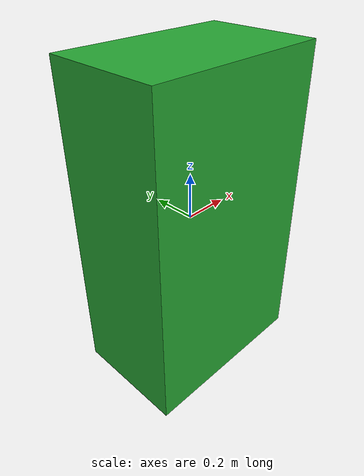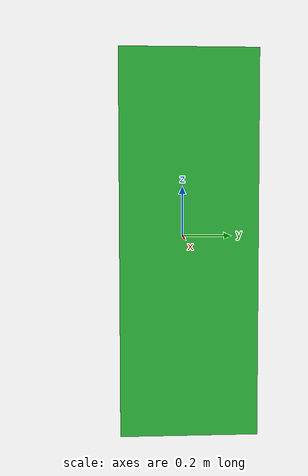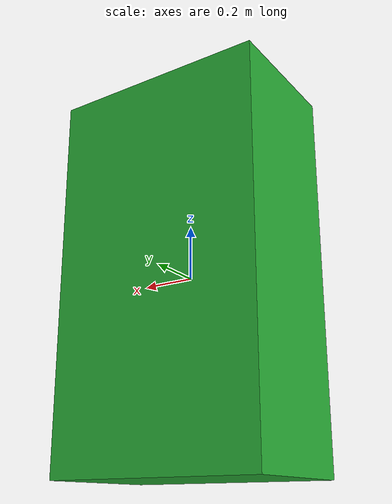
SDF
<?xml version="1.0" encoding="UTF-8"?>
<sdf version='1.4'>
  <model name="baggage_D_1.4">
      <static>true</static>
      <link name="link">
         <collision name="collision">
            <geometry>
               <box>
                  <size>0.8 0.5 1.4</size>
               </box>
            </geometry>
         </collision>
         <visual name="visual">
            <cast_shadows>false</cast_shadows>
            <geometry>
               <box>
                  <size>0.8 0.5 1.4</size>
               </box>
            </geometry>
            <material>
               <script>
                  <uri>file://media/materials/scripts/gazebo.material</uri>
                  <name>Gazebo/Green</name>
               </script>
            </material>
         </visual>
      </link>
  </model>
</sdf>
